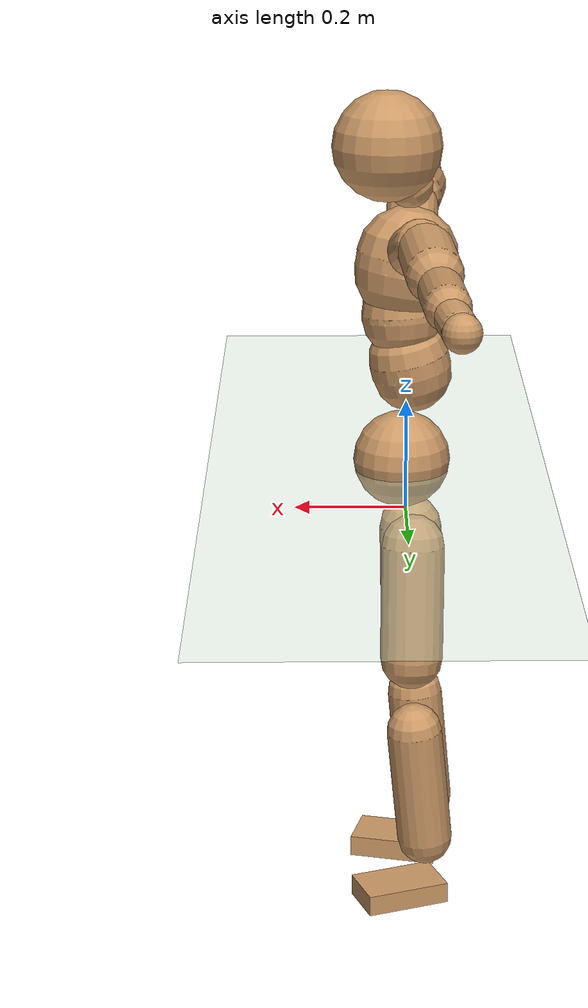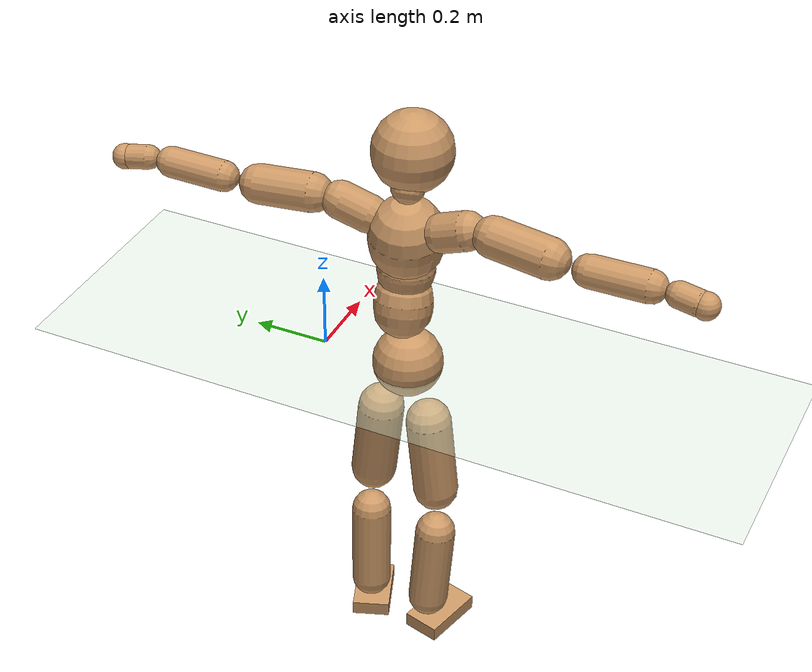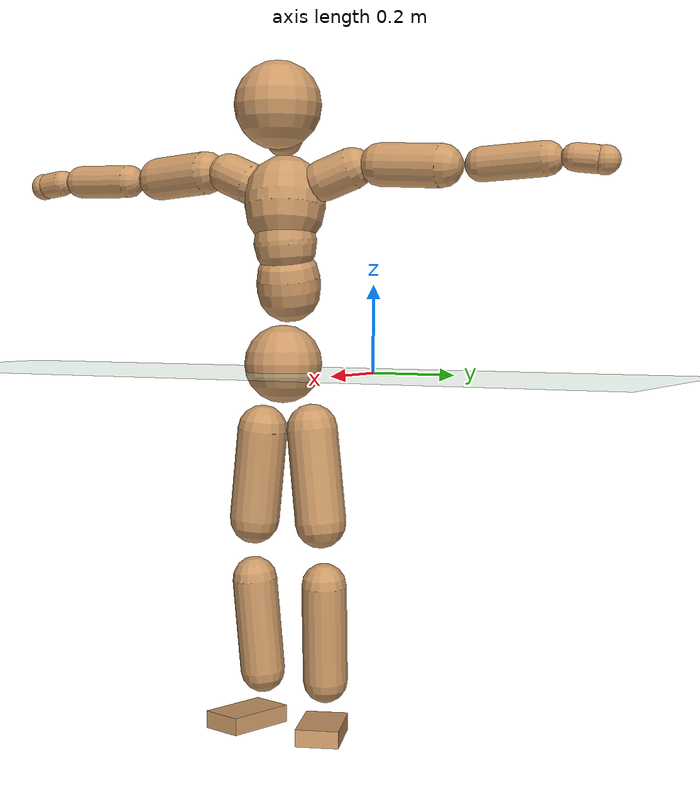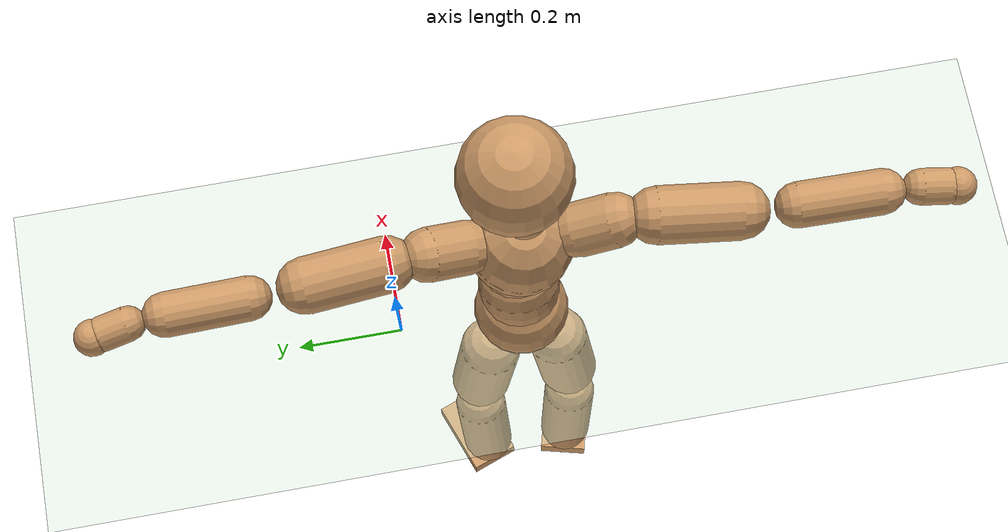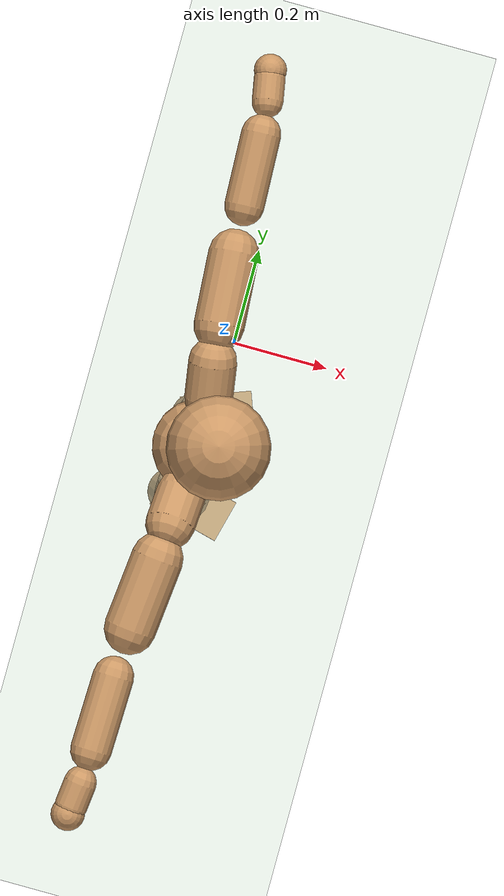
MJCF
<mujoco model="humanoid">
  <compiler coordinate="local" angle="radian"/>
  <default>
    <joint damping="0.0" armature="0.01" stiffness="0.0" limited="true"/>
    <geom conaffinity="1" condim="3" contype="7" margin="0.001" rgba="0.8 0.6 .4 1"/>
  </default>
  <asset>
    <texture type="skybox" builtin="gradient" rgb1=".4 .5 .6" rgb2="0 0 0" width="100" height="100"/>
    <texture builtin="flat" height="1278" mark="cross" markrgb="1 1 1" name="texgeom" random="0.01" rgb1="0.8 0.6 0.4" rgb2="0.8 0.6 0.4" type="cube" width="127"/>
    <texture builtin="checker" height="100" name="texplane" rgb1="0 0 0" rgb2="0.8 0.8 0.8" type="2d" width="100"/>
    <material name="MatPlane" reflectance="0.5" shininess="1" specular="1" texrepeat="60 60" texture="texplane"/>
    <material name="geom" texture="texgeom" texuniform="true"/>
  </asset>
  <worldbody>
    <light cutoff="100" diffuse="1 1 1" dir="-0 0 -1.3" directional="true" exponent="1" pos="0 0 1.3" specular=".1 .1 .1"/>
    <geom conaffinity="1" condim="3" name="floor" pos="0 0 0" rgba="0.8 0.9 0.8 1" size="100 100 .2" type="plane" material="MatPlane"/>
    <body name="Pelvis" pos="0.0003 -0.2364 0.0165">
      <freejoint name="Pelvis"/>
      <geom type="sphere" contype="1" conaffinity="1" density="500" size="0.0917" pos="0.0000 0.0000 0.0000" name="Pelvis"/>
      <body name="L_Hip" pos="-0.0216 0.0578 -0.08">
        <joint name="L_Hip_x" type="hinge" pos="0 0 0" axis="1 0 0" stiffness="800" damping="80" armature="0.02" range="-180.0000 180.0000"/>
        <joint name="L_Hip_y" type="hinge" pos="0 0 0" axis="0 1 0" stiffness="800" damping="80" armature="0.02" range="-180.0000 180.0000"/>
        <joint name="L_Hip_z" type="hinge" pos="0 0 0" axis="0 0 1" stiffness="800" damping="80" armature="0.02" range="-180.0000 180.0000"/>
        <geom type="capsule" contype="1" conaffinity="1" density="500" fromto="0.0010 0.0083 -0.0729 0.0039 0.0331 -0.2915" size="0.0601" name="L_Hip"/>
        <body name="L_Knee" pos="0.0048 0.0413 -0.3644">
          <joint name="L_Knee_x" type="hinge" pos="0 0 0" axis="1 0 0" stiffness="800" damping="80" armature="0.02" range="-180.0000 180.0000"/>
          <joint name="L_Knee_y" type="hinge" pos="0 0 0" axis="0 1 0" stiffness="800" damping="80" armature="0.02" range="-180.0000 180.0000"/>
          <joint name="L_Knee_z" type="hinge" pos="0 0 0" axis="0 0 1" stiffness="800" damping="80" armature="0.02" range="-180.0000 180.0000"/>
          <geom type="capsule" contype="1" conaffinity="1" density="500" fromto="-0.0072 -0.0026 -0.0769 -0.0288 -0.0104 -0.3076" size="0.0532" name="L_Knee"/>
          <body name="L_Ankle" pos="-0.036 -0.013 -0.3845">
            <joint name="L_Ankle_x" type="hinge" pos="0 0 0" axis="1 0 0" stiffness="800" damping="80" armature="0.02" range="-180.0000 180.0000"/>
            <joint name="L_Ankle_y" type="hinge" pos="0 0 0" axis="0 1 0" stiffness="800" damping="80" armature="0.02" range="-180.0000 180.0000"/>
            <joint name="L_Ankle_z" type="hinge" pos="0 0 0" axis="0 0 1" stiffness="800" damping="80" armature="0.02" range="-180.0000 180.0000"/>
            <geom type="box" contype="1" conaffinity="1" density="500" pos="0.0565 0.0208 -0.0280" size="0.0815 0.0505 0.0201" quat="0.9845 0.0000 0.0000 0.1756" name="L_Ankle"/>
            <body name="L_Toe" pos="0.1131 0.0417 -0.0559">
              <joint name="L_Toe_x" type="hinge" pos="0 0 0" axis="1 0 0" stiffness="500" damping="50" armature="0.02" range="-180.0000 180.0000"/>
              <joint name="L_Toe_y" type="hinge" pos="0 0 0" axis="0 1 0" stiffness="500" damping="50" armature="0.02" range="-180.0000 180.0000"/>
              <joint name="L_Toe_z" type="hinge" pos="0 0 0" axis="0 0 1" stiffness="500" damping="50" armature="0.02" range="-180.0000 180.0000"/>
              <geom type="box" contype="1" conaffinity="1" density="500" pos="0.0000 0.0000 0.0279" size="0.001 0.0024 0.001" quat="0.9836 0.0000 0.0000 0.1804" name="L_Toe"/>
            </body>
          </body>
        </body>
      </body>
      <body name="R_Hip" pos="-0.0182 -0.0604 -0.0874">
        <joint name="R_Hip_x" type="hinge" pos="0 0 0" axis="1 0 0" stiffness="800" damping="80" armature="0.02" range="-180.0000 180.0000"/>
        <joint name="R_Hip_y" type="hinge" pos="0 0 0" axis="0 1 0" stiffness="800" damping="80" armature="0.02" range="-180.0000 180.0000"/>
        <joint name="R_Hip_z" type="hinge" pos="0 0 0" axis="0 0 1" stiffness="800" damping="80" armature="0.02" range="-180.0000 180.0000"/>
        <geom type="capsule" contype="1" conaffinity="1" density="500" fromto="-0.0013 -0.0083 -0.0719 -0.0050 -0.0331 -0.2878" size="0.0597" name="R_Hip"/>
        <body name="R_Knee" pos="-0.0063 -0.0414 -0.3597">
          <joint name="R_Knee_x" type="hinge" pos="0 0 0" axis="1 0 0" stiffness="800" damping="80" armature="0.02" range="-180.0000 180.0000"/>
          <joint name="R_Knee_y" type="hinge" pos="0 0 0" axis="0 1 0" stiffness="800" damping="80" armature="0.02" range="-180.0000 180.0000"/>
          <joint name="R_Knee_z" type="hinge" pos="0 0 0" axis="0 0 1" stiffness="800" damping="80" armature="0.02" range="-180.0000 180.0000"/>
          <geom type="capsule" contype="1" conaffinity="1" density="500" fromto="-0.0067 0.0034 -0.0756 -0.0267 0.0136 -0.3023" size="0.0537" name="R_Knee"/>
          <body name="R_Ankle" pos="-0.0334 0.0169 -0.3779">
            <joint name="R_Ankle_x" type="hinge" pos="0 0 0" axis="1 0 0" stiffness="800" damping="80" armature="0.02" range="-180.0000 180.0000"/>
            <joint name="R_Ankle_y" type="hinge" pos="0 0 0" axis="0 1 0" stiffness="800" damping="80" armature="0.02" range="-180.0000 180.0000"/>
            <joint name="R_Ankle_z" type="hinge" pos="0 0 0" axis="0 0 1" stiffness="800" damping="80" armature="0.02" range="-180.0000 180.0000"/>
            <geom type="box" contype="1" conaffinity="1" density="500" pos="0.0608 -0.0155 -0.0291" size="0.0852 0.05 0.0206" quat="0.9922 0.0000 0.0000 -0.1246" name="R_Ankle"/>
            <body name="R_Toe" pos="0.1215 -0.031 -0.0581">
              <joint name="R_Toe_x" type="hinge" pos="0 0 0" axis="1 0 0" stiffness="500" damping="50" armature="0.02" range="-180.0000 180.0000"/>
              <joint name="R_Toe_y" type="hinge" pos="0 0 0" axis="0 1 0" stiffness="500" damping="50" armature="0.02" range="-180.0000 180.0000"/>
              <joint name="R_Toe_z" type="hinge" pos="0 0 0" axis="0 0 1" stiffness="500" damping="50" armature="0.02" range="-180.0000 180.0000"/>
              <geom type="box" contype="1" conaffinity="1" density="500" pos="0.0000 0.0000 0.0305" size="0.001 0.0024 0.0011" quat="0.9934 0.0000 0.0000 -0.1151" name="R_Toe"/>
            </body>
          </body>
        </body>
      </body>
      <body name="Torso" pos="-0.0304 0.004 0.1182">
        <joint name="Torso_x" type="hinge" pos="0 0 0" axis="1 0 0" stiffness="1000" damping="100" armature="0.02" range="-180.0000 180.0000"/>
        <joint name="Torso_y" type="hinge" pos="0 0 0" axis="0 1 0" stiffness="1000" damping="100" armature="0.02" range="-180.0000 180.0000"/>
        <joint name="Torso_z" type="hinge" pos="0 0 0" axis="0 0 1" stiffness="1000" damping="100" armature="0.02" range="-180.0000 180.0000"/>
        <geom type="capsule" contype="1" conaffinity="1" density="500" fromto="0.0183 0.0025 0.0820 0.0122 0.0016 0.0547" size="0.0752" name="Torso"/>
        <body name="Spine" pos="0.0305 0.0041 0.1367">
          <joint name="Spine_x" type="hinge" pos="0 0 0" axis="1 0 0" stiffness="1000" damping="100" armature="0.02" range="-180.0000 180.0000"/>
          <joint name="Spine_y" type="hinge" pos="0 0 0" axis="0 1 0" stiffness="1000" damping="100" armature="0.02" range="-180.0000 180.0000"/>
          <joint name="Spine_z" type="hinge" pos="0 0 0" axis="0 0 1" stiffness="1000" damping="100" armature="0.02" range="-180.0000 180.0000"/>
          <geom type="capsule" contype="1" conaffinity="1" density="500" fromto="0.0021 -0.0015 0.0329 0.0014 -0.0010 0.0219" size="0.0742" name="Spine"/>
          <body name="Chest" pos="0.0036 -0.0025 0.0548">
            <joint name="Chest_x" type="hinge" pos="0 0 0" axis="1 0 0" stiffness="1000" damping="100" armature="0.02" range="-180.0000 180.0000"/>
            <joint name="Chest_y" type="hinge" pos="0 0 0" axis="0 1 0" stiffness="1000" damping="100" armature="0.02" range="-180.0000 180.0000"/>
            <joint name="Chest_z" type="hinge" pos="0 0 0" axis="0 0 1" stiffness="1000" damping="100" armature="0.02" range="-180.0000 180.0000"/>
            <geom type="capsule" contype="1" conaffinity="1" density="500" fromto="-0.0132 -0.0051 0.0816 -0.0088 -0.0034 0.0544" size="0.0953" name="Chest"/>
            <body name="Neck" pos="-0.0274 -0.0125 0.1973">
              <joint name="Neck_x" type="hinge" pos="0 0 0" axis="1 0 0" stiffness="500" damping="50" armature="0.02" range="-180.0000 180.0000"/>
              <joint name="Neck_y" type="hinge" pos="0 0 0" axis="0 1 0" stiffness="500" damping="50" armature="0.02" range="-180.0000 180.0000"/>
              <joint name="Neck_z" type="hinge" pos="0 0 0" axis="0 0 1" stiffness="500" damping="50" armature="0.02" range="-180.0000 180.0000"/>
              <geom type="capsule" contype="1" conaffinity="1" density="500" fromto="0.0104 0.0019 0.0182 0.0417 0.0077 0.0727" size="0.0431" name="Neck"/>
              <body name="Head" pos="0.0521 0.0097 0.0909">
                <joint name="Head_x" type="hinge" pos="0 0 0" axis="1 0 0" stiffness="500" damping="50" armature="0.02" range="-180.0000 180.0000"/>
                <joint name="Head_y" type="hinge" pos="0 0 0" axis="0 1 0" stiffness="500" damping="50" armature="0.02" range="-180.0000 180.0000"/>
                <joint name="Head_z" type="hinge" pos="0 0 0" axis="0 0 1" stiffness="500" damping="50" armature="0.02" range="-180.0000 180.0000"/>
                <geom type="sphere" contype="1" conaffinity="1" density="500" size="0.1020" pos="0.0000 0.0000 0.0000" name="Head"/>
              </body>
            </body>
            <body name="L_Thorax" pos="-0.0174 0.0682 0.1055">
              <joint name="L_Thorax_x" type="hinge" pos="0 0 0" axis="1 0 0" stiffness="500" damping="50" armature="0.02" range="-180.0000 180.0000"/>
              <joint name="L_Thorax_y" type="hinge" pos="0 0 0" axis="0 1 0" stiffness="500" damping="50" armature="0.02" range="-180.0000 180.0000"/>
              <joint name="L_Thorax_z" type="hinge" pos="0 0 0" axis="0 0 1" stiffness="500" damping="50" armature="0.02" range="-180.0000 180.0000"/>
              <geom type="capsule" contype="1" conaffinity="1" density="500" fromto="-0.0035 0.0233 0.0088 -0.0142 0.0932 0.0351" size="0.0484" name="L_Thorax"/>
              <body name="L_Shoulder" pos="-0.0177 0.1165 0.0439">
                <joint name="L_Shoulder_x" type="hinge" pos="0 0 0" axis="1 0 0" stiffness="500" damping="50" armature="0.02" range="-720.0000 720.0000"/>
                <joint name="L_Shoulder_y" type="hinge" pos="0 0 0" axis="0 1 0" stiffness="500" damping="50" armature="0.02" range="-720.0000 720.0000"/>
                <joint name="L_Shoulder_z" type="hinge" pos="0 0 0" axis="0 0 1" stiffness="500" damping="50" armature="0.02" range="-720.0000 720.0000"/>
                <geom type="capsule" contype="1" conaffinity="1" density="500" fromto="-0.0033 0.0480 -0.0028 -0.0131 0.1920 -0.0112" size="0.0502" name="L_Shoulder"/>
                <body name="L_Elbow" pos="-0.0163 0.24 -0.014">
                  <joint name="L_Elbow_x" type="hinge" pos="0 0 0" axis="1 0 0" stiffness="500" damping="50" armature="0.02" range="-720.0000 720.0000"/>
                  <joint name="L_Elbow_y" type="hinge" pos="0 0 0" axis="0 1 0" stiffness="500" damping="50" armature="0.02" range="-720.0000 720.0000"/>
                  <joint name="L_Elbow_z" type="hinge" pos="0 0 0" axis="0 0 1" stiffness="500" damping="50" armature="0.02" range="-720.0000 720.0000"/>
                  <geom type="capsule" contype="1" conaffinity="1" density="500" fromto="-0.0019 0.0484 0.0021 -0.0075 0.1937 0.0082" size="0.0393" name="L_Elbow"/>
                  <body name="L_Wrist" pos="-0.0094 0.2421 0.0103">
                    <joint name="L_Wrist_x" type="hinge" pos="0 0 0" axis="1 0 0" stiffness="300" damping="30" armature="0.02" range="-180.0000 180.0000"/>
                    <joint name="L_Wrist_y" type="hinge" pos="0 0 0" axis="0 1 0" stiffness="300" damping="30" armature="0.02" range="-180.0000 180.0000"/>
                    <joint name="L_Wrist_z" type="hinge" pos="0 0 0" axis="0 0 1" stiffness="300" damping="30" armature="0.02" range="-180.0000 180.0000"/>
                    <geom type="capsule" contype="1" conaffinity="1" density="500" fromto="-0.0028 0.0157 -0.0020 -0.0113 0.0629 -0.0078" size="0.0312" name="L_Wrist"/>
                    <body name="L_Hand" pos="-0.0141 0.0786 -0.0098">
                      <joint name="L_Hand_x" type="hinge" pos="0 0 0" axis="1 0 0" stiffness="300" damping="30" armature="0.02" range="-180.0000 180.0000"/>
                      <joint name="L_Hand_y" type="hinge" pos="0 0 0" axis="0 1 0" stiffness="300" damping="30" armature="0.02" range="-180.0000 180.0000"/>
                      <joint name="L_Hand_z" type="hinge" pos="0 0 0" axis="0 0 1" stiffness="300" damping="30" armature="0.02" range="-180.0000 180.0000"/>
                      <geom type="sphere" contype="1" conaffinity="1" density="500" size="0.0324" pos="0.0000 0.0000 0.0000" name="L_Hand"/>
                    </body>
                  </body>
                </body>
              </body>
            </body>
            <body name="R_Thorax" pos="-0.0213 -0.0812 0.1051">
              <joint name="R_Thorax_x" type="hinge" pos="0 0 0" axis="1 0 0" stiffness="500" damping="50" armature="0.02" range="-180.0000 180.0000"/>
              <joint name="R_Thorax_y" type="hinge" pos="0 0 0" axis="0 1 0" stiffness="500" damping="50" armature="0.02" range="-180.0000 180.0000"/>
              <joint name="R_Thorax_z" type="hinge" pos="0 0 0" axis="0 0 1" stiffness="500" damping="50" armature="0.02" range="-180.0000 180.0000"/>
              <geom type="capsule" contype="1" conaffinity="1" density="500" fromto="-0.0015 -0.0219 0.0090 -0.0060 -0.0875 0.0362" size="0.0492" name="R_Thorax"/>
              <body name="R_Shoulder" pos="-0.0075 -0.1094 0.0452">
                <joint name="R_Shoulder_x" type="hinge" pos="0 0 0" axis="1 0 0" stiffness="500" damping="50" armature="0.02" range="-720.0000 720.0000"/>
                <joint name="R_Shoulder_y" type="hinge" pos="0 0 0" axis="0 1 0" stiffness="500" damping="50" armature="0.02" range="-720.0000 720.0000"/>
                <joint name="R_Shoulder_z" type="hinge" pos="0 0 0" axis="0 0 1" stiffness="500" damping="50" armature="0.02" range="-720.0000 720.0000"/>
                <geom type="capsule" contype="1" conaffinity="1" density="500" fromto="-0.0051 -0.0489 -0.0027 -0.0203 -0.1956 -0.0109" size="0.0517" name="R_Shoulder"/>
                <body name="R_Elbow" pos="-0.0254 -0.2445 -0.0137">
                  <joint name="R_Elbow_x" type="hinge" pos="0 0 0" axis="1 0 0" stiffness="500" damping="50" armature="0.02" range="-720.0000 720.0000"/>
                  <joint name="R_Elbow_y" type="hinge" pos="0 0 0" axis="0 1 0" stiffness="500" damping="50" armature="0.02" range="-720.0000 720.0000"/>
                  <joint name="R_Elbow_z" type="hinge" pos="0 0 0" axis="0 0 1" stiffness="500" damping="50" armature="0.02" range="-720.0000 720.0000"/>
                  <geom type="capsule" contype="1" conaffinity="1" density="500" fromto="-0.0013 -0.0501 0.0015 -0.0053 -0.2004 0.0060" size="0.0407" name="R_Elbow"/>
                  <body name="R_Wrist" pos="-0.0066 -0.2505 0.0075">
                    <joint name="R_Wrist_x" type="hinge" pos="0 0 0" axis="1 0 0" stiffness="300" damping="30" armature="0.02" range="-180.0000 180.0000"/>
                    <joint name="R_Wrist_y" type="hinge" pos="0 0 0" axis="0 1 0" stiffness="300" damping="30" armature="0.02" range="-180.0000 180.0000"/>
                    <joint name="R_Wrist_z" type="hinge" pos="0 0 0" axis="0 0 1" stiffness="300" damping="30" armature="0.02" range="-180.0000 180.0000"/>
                    <geom type="capsule" contype="1" conaffinity="1" density="500" fromto="-0.0019 -0.0165 -0.0016 -0.0075 -0.0659 -0.0064" size="0.0325" name="R_Wrist"/>
                    <body name="R_Hand" pos="-0.0093 -0.0824 -0.008">
                      <joint name="R_Hand_x" type="hinge" pos="0 0 0" axis="1 0 0" stiffness="300" damping="30" armature="0.02" range="-180.0000 180.0000"/>
                      <joint name="R_Hand_y" type="hinge" pos="0 0 0" axis="0 1 0" stiffness="300" damping="30" armature="0.02" range="-180.0000 180.0000"/>
                      <joint name="R_Hand_z" type="hinge" pos="0 0 0" axis="0 0 1" stiffness="300" damping="30" armature="0.02" range="-180.0000 180.0000"/>
                      <geom type="sphere" contype="1" conaffinity="1" density="500" size="0.0336" pos="0.0000 0.0000 0.0000" name="R_Hand"/>
                    </body>
                  </body>
                </body>
              </body>
            </body>
          </body>
        </body>
      </body>
    </body>
  </worldbody>
  <actuator>
    <motor name="L_Hip_x" joint="L_Hip_x" gear="500"/>
    <motor name="L_Hip_y" joint="L_Hip_y" gear="500"/>
    <motor name="L_Hip_z" joint="L_Hip_z" gear="500"/>
    <motor name="L_Knee_x" joint="L_Knee_x" gear="500"/>
    <motor name="L_Knee_y" joint="L_Knee_y" gear="500"/>
    <motor name="L_Knee_z" joint="L_Knee_z" gear="500"/>
    <motor name="L_Ankle_x" joint="L_Ankle_x" gear="500"/>
    <motor name="L_Ankle_y" joint="L_Ankle_y" gear="500"/>
    <motor name="L_Ankle_z" joint="L_Ankle_z" gear="500"/>
    <motor name="L_Toe_x" joint="L_Toe_x" gear="500"/>
    <motor name="L_Toe_y" joint="L_Toe_y" gear="500"/>
    <motor name="L_Toe_z" joint="L_Toe_z" gear="500"/>
    <motor name="R_Hip_x" joint="R_Hip_x" gear="500"/>
    <motor name="R_Hip_y" joint="R_Hip_y" gear="500"/>
    <motor name="R_Hip_z" joint="R_Hip_z" gear="500"/>
    <motor name="R_Knee_x" joint="R_Knee_x" gear="500"/>
    <motor name="R_Knee_y" joint="R_Knee_y" gear="500"/>
    <motor name="R_Knee_z" joint="R_Knee_z" gear="500"/>
    <motor name="R_Ankle_x" joint="R_Ankle_x" gear="500"/>
    <motor name="R_Ankle_y" joint="R_Ankle_y" gear="500"/>
    <motor name="R_Ankle_z" joint="R_Ankle_z" gear="500"/>
    <motor name="R_Toe_x" joint="R_Toe_x" gear="500"/>
    <motor name="R_Toe_y" joint="R_Toe_y" gear="500"/>
    <motor name="R_Toe_z" joint="R_Toe_z" gear="500"/>
    <motor name="Torso_x" joint="Torso_x" gear="500"/>
    <motor name="Torso_y" joint="Torso_y" gear="500"/>
    <motor name="Torso_z" joint="Torso_z" gear="500"/>
    <motor name="Spine_x" joint="Spine_x" gear="500"/>
    <motor name="Spine_y" joint="Spine_y" gear="500"/>
    <motor name="Spine_z" joint="Spine_z" gear="500"/>
    <motor name="Chest_x" joint="Chest_x" gear="500"/>
    <motor name="Chest_y" joint="Chest_y" gear="500"/>
    <motor name="Chest_z" joint="Chest_z" gear="500"/>
    <motor name="Neck_x" joint="Neck_x" gear="500"/>
    <motor name="Neck_y" joint="Neck_y" gear="500"/>
    <motor name="Neck_z" joint="Neck_z" gear="500"/>
    <motor name="Head_x" joint="Head_x" gear="500"/>
    <motor name="Head_y" joint="Head_y" gear="500"/>
    <motor name="Head_z" joint="Head_z" gear="500"/>
    <motor name="L_Thorax_x" joint="L_Thorax_x" gear="500"/>
    <motor name="L_Thorax_y" joint="L_Thorax_y" gear="500"/>
    <motor name="L_Thorax_z" joint="L_Thorax_z" gear="500"/>
    <motor name="L_Shoulder_x" joint="L_Shoulder_x" gear="500"/>
    <motor name="L_Shoulder_y" joint="L_Shoulder_y" gear="500"/>
    <motor name="L_Shoulder_z" joint="L_Shoulder_z" gear="500"/>
    <motor name="L_Elbow_x" joint="L_Elbow_x" gear="500"/>
    <motor name="L_Elbow_y" joint="L_Elbow_y" gear="500"/>
    <motor name="L_Elbow_z" joint="L_Elbow_z" gear="500"/>
    <motor name="L_Wrist_x" joint="L_Wrist_x" gear="500"/>
    <motor name="L_Wrist_y" joint="L_Wrist_y" gear="500"/>
    <motor name="L_Wrist_z" joint="L_Wrist_z" gear="500"/>
    <motor name="L_Hand_x" joint="L_Hand_x" gear="500"/>
    <motor name="L_Hand_y" joint="L_Hand_y" gear="500"/>
    <motor name="L_Hand_z" joint="L_Hand_z" gear="500"/>
    <motor name="R_Thorax_x" joint="R_Thorax_x" gear="500"/>
    <motor name="R_Thorax_y" joint="R_Thorax_y" gear="500"/>
    <motor name="R_Thorax_z" joint="R_Thorax_z" gear="500"/>
    <motor name="R_Shoulder_x" joint="R_Shoulder_x" gear="500"/>
    <motor name="R_Shoulder_y" joint="R_Shoulder_y" gear="500"/>
    <motor name="R_Shoulder_z" joint="R_Shoulder_z" gear="500"/>
    <motor name="R_Elbow_x" joint="R_Elbow_x" gear="500"/>
    <motor name="R_Elbow_y" joint="R_Elbow_y" gear="500"/>
    <motor name="R_Elbow_z" joint="R_Elbow_z" gear="500"/>
    <motor name="R_Wrist_x" joint="R_Wrist_x" gear="500"/>
    <motor name="R_Wrist_y" joint="R_Wrist_y" gear="500"/>
    <motor name="R_Wrist_z" joint="R_Wrist_z" gear="500"/>
    <motor name="R_Hand_x" joint="R_Hand_x" gear="500"/>
    <motor name="R_Hand_y" joint="R_Hand_y" gear="500"/>
    <motor name="R_Hand_z" joint="R_Hand_z" gear="500"/>
  </actuator>
  <contact>
    <exclude body1="Torso" body2="Chest"/>
    <exclude body1="Head" body2="Chest"/>
    <exclude body1="R_Knee" body2="R_Toe"/>
    <exclude body1="R_Knee" body2="L_Ankle"/>
    <exclude body1="R_Knee" body2="L_Toe"/>
    <exclude body1="L_Knee" body2="L_Toe"/>
    <exclude body1="L_Knee" body2="R_Ankle"/>
    <exclude body1="L_Knee" body2="R_Toe"/>
    <exclude body1="L_Shoulder" body2="Chest"/>
    <exclude body1="R_Shoulder" body2="Chest"/>
  </contact>
  <sensor/>
  <size njmax="700" nconmax="700"/>
</mujoco>
